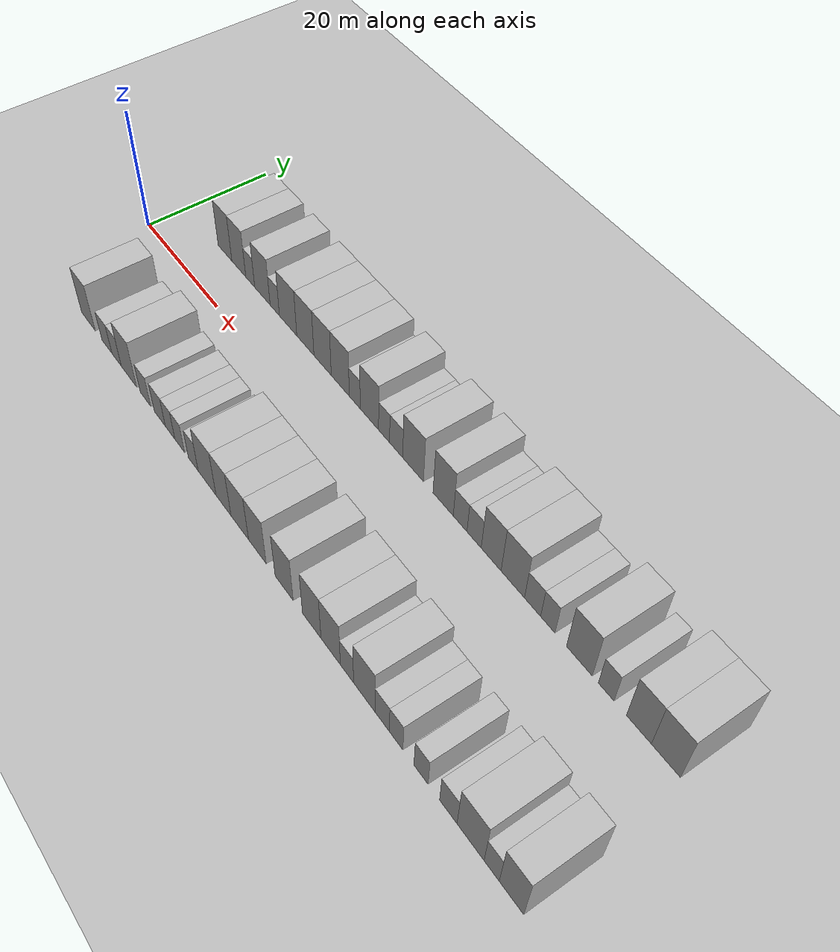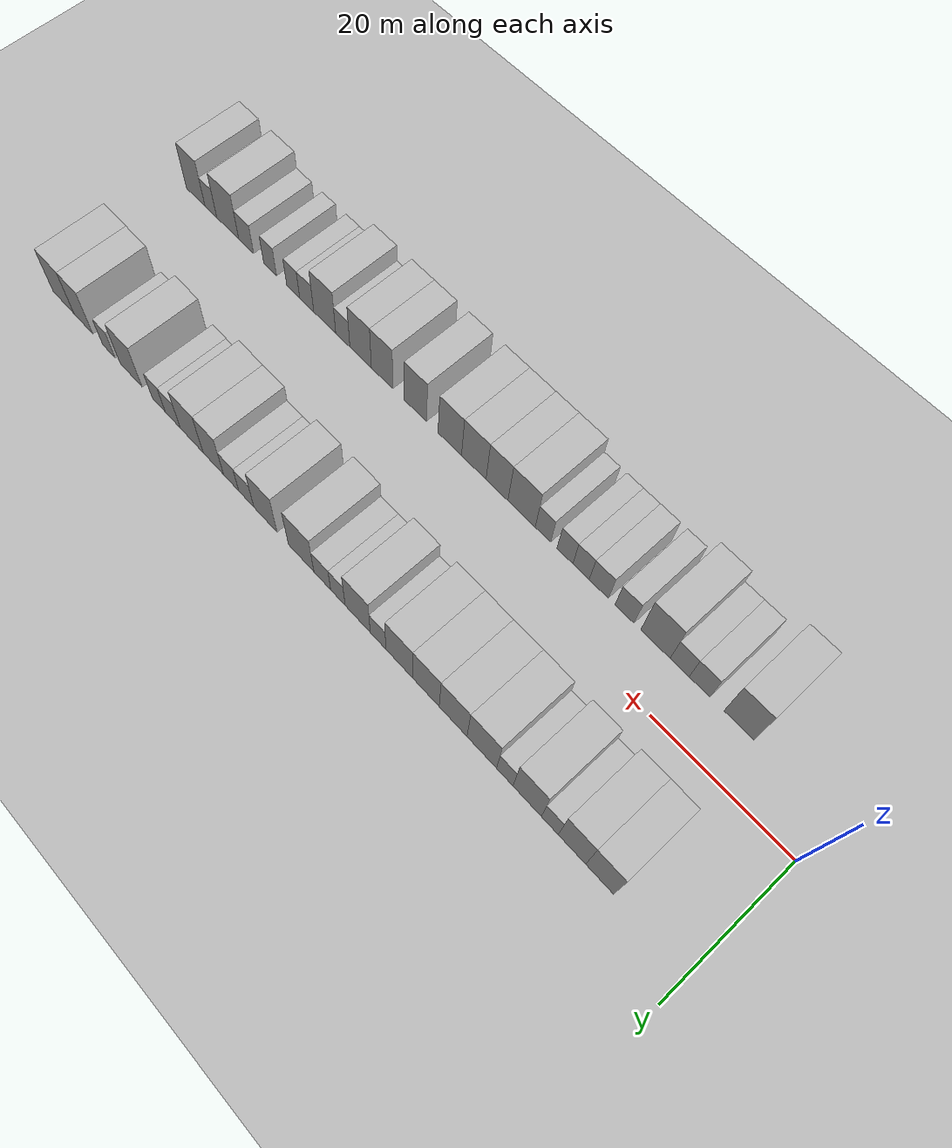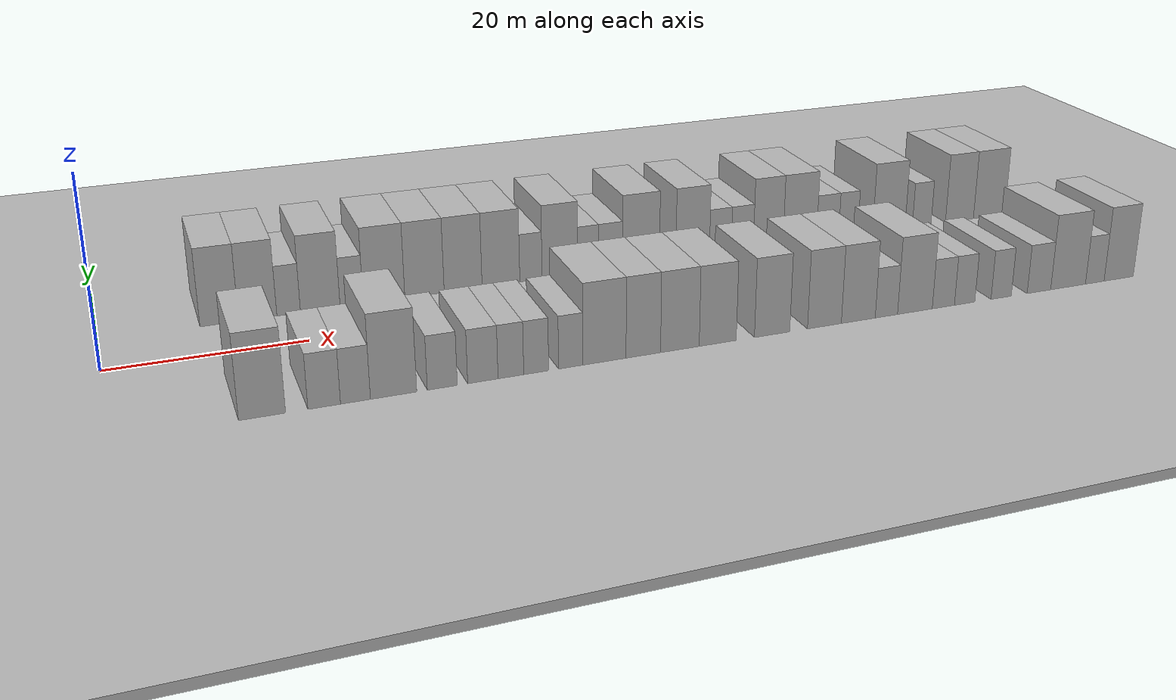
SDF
<sdf version="1.6">
 <world name="default">
  <include><name>ground_plane_1</name><uri>model://HANNAS_ground_plane</uri></include>
  <include>
   <name>ground_plane_2</name>
   <uri>model://HANNAS_ground_plane</uri>
   <pose>100 0 0  0 0 0</pose>
  </include>
  <model name="building_1">
   <static>1</static>
   <pose>11.9366 11.0000 0 0.000000 0.000000 1.570796</pose>
   <link name="link">
    <pose>0 0 4.50 0 0 0</pose>
    <collision name="collision"><geometry><box><size>10.0000 3.8731 9.0000</size></box></geometry></collision>
    <visual name="visual">
     <cast_shadows>0</cast_shadows>
     <geometry><box><size>10.0000 3.8731 9.0000</size></box></geometry>
     <material>
      <script>
       <uri>model://HANNAS_wall/materials/scripts</uri>
       <uri>model://HANNAS_wall/materials/textures</uri>
       <name>vrc/HANNAS_wall</name>
      </script>
     </material>
    </visual>
   </link>
  </model>
  <model name="building_2">
   <static>1</static>
   <pose>15.8093 11.0000 0 0.000000 0.000000 1.570796</pose>
   <link name="link">
    <pose>0 0 4.50 0 0 0</pose>
    <collision name="collision"><geometry><box><size>10.0000 3.8724 9.0000</size></box></geometry></collision>
    <visual name="visual">
     <cast_shadows>0</cast_shadows>
     <geometry><box><size>10.0000 3.8724 9.0000</size></box></geometry>
     <material>
      <script>
       <uri>model://HANNAS_wall/materials/scripts</uri>
       <uri>model://HANNAS_wall/materials/textures</uri>
       <name>vrc/HANNAS_wall</name>
      </script>
     </material>
    </visual>
   </link>
  </model>
  <model name="building_3">
   <static>1</static>
   <pose>18.9615 11.0000 0 0.000000 0.000000 1.570796</pose>
   <link name="link">
    <pose>0 0 3.00 0 0 0</pose>
    <collision name="collision"><geometry><box><size>10.0000 2.4319 6.0000</size></box></geometry></collision>
    <visual name="visual">
     <cast_shadows>0</cast_shadows>
     <geometry><box><size>10.0000 2.4319 6.0000</size></box></geometry>
     <material>
      <script>
       <uri>model://HANNAS_wall/materials/scripts</uri>
       <uri>model://HANNAS_wall/materials/textures</uri>
       <name>vrc/HANNAS_wall</name>
      </script>
     </material>
    </visual>
   </link>
  </model>
  <model name="building_4">
   <static>1</static>
   <pose>22.2412 11.0000 0 0.000000 0.000000 1.570796</pose>
   <link name="link">
    <pose>0 0 4.50 0 0 0</pose>
    <collision name="collision"><geometry><box><size>10.0000 4.1276 9.0000</size></box></geometry></collision>
    <visual name="visual">
     <cast_shadows>0</cast_shadows>
     <geometry><box><size>10.0000 4.1276 9.0000</size></box></geometry>
     <material>
      <script>
       <uri>model://HANNAS_wall/materials/scripts</uri>
       <uri>model://HANNAS_wall/materials/textures</uri>
       <name>vrc/HANNAS_wall</name>
      </script>
     </material>
    </visual>
   </link>
  </model>
  <model name="building_5">
   <static>1</static>
   <pose>25.5283 11.0000 0 0.000000 0.000000 1.570796</pose>
   <link name="link">
    <pose>0 0 3.00 0 0 0</pose>
    <collision name="collision"><geometry><box><size>10.0000 2.4465 6.0000</size></box></geometry></collision>
    <visual name="visual">
     <cast_shadows>0</cast_shadows>
     <geometry><box><size>10.0000 2.4465 6.0000</size></box></geometry>
     <material>
      <script>
       <uri>model://HANNAS_wall/materials/scripts</uri>
       <uri>model://HANNAS_wall/materials/textures</uri>
       <name>vrc/HANNAS_wall</name>
      </script>
     </material>
    </visual>
   </link>
  </model>
  <model name="building_6">
   <static>1</static>
   <pose>28.9808 11.0000 0 0.000000 0.000000 1.570796</pose>
   <link name="link">
    <pose>0 0 4.50 0 0 0</pose>
    <collision name="collision"><geometry><box><size>10.0000 4.4585 9.0000</size></box></geometry></collision>
    <visual name="visual">
     <cast_shadows>0</cast_shadows>
     <geometry><box><size>10.0000 4.4585 9.0000</size></box></geometry>
     <material>
      <script>
       <uri>model://HANNAS_wall/materials/scripts</uri>
       <uri>model://HANNAS_wall/materials/textures</uri>
       <name>vrc/HANNAS_wall</name>
      </script>
     </material>
    </visual>
   </link>
  </model>
  <model name="building_7">
   <static>1</static>
   <pose>33.3568 11.0000 0 0.000000 0.000000 1.570796</pose>
   <link name="link">
    <pose>0 0 4.50 0 0 0</pose>
    <collision name="collision"><geometry><box><size>10.0000 4.2935 9.0000</size></box></geometry></collision>
    <visual name="visual">
     <cast_shadows>0</cast_shadows>
     <geometry><box><size>10.0000 4.2935 9.0000</size></box></geometry>
     <material>
      <script>
       <uri>model://HANNAS_wall/materials/scripts</uri>
       <uri>model://HANNAS_wall/materials/textures</uri>
       <name>vrc/HANNAS_wall</name>
      </script>
     </material>
    </visual>
   </link>
  </model>
  <model name="building_8">
   <static>1</static>
   <pose>37.6068 11.0000 0 0.000000 0.000000 1.570796</pose>
   <link name="link">
    <pose>0 0 4.50 0 0 0</pose>
    <collision name="collision"><geometry><box><size>10.0000 4.2064 9.0000</size></box></geometry></collision>
    <visual name="visual">
     <cast_shadows>0</cast_shadows>
     <geometry><box><size>10.0000 4.2064 9.0000</size></box></geometry>
     <material>
      <script>
       <uri>model://HANNAS_wall/materials/scripts</uri>
       <uri>model://HANNAS_wall/materials/textures</uri>
       <name>vrc/HANNAS_wall</name>
      </script>
     </material>
    </visual>
   </link>
  </model>
  <model name="building_9">
   <static>1</static>
   <pose>41.8423 11.0000 0 0.000000 0.000000 1.570796</pose>
   <link name="link">
    <pose>0 0 4.50 0 0 0</pose>
    <collision name="collision"><geometry><box><size>10.0000 4.2647 9.0000</size></box></geometry></collision>
    <visual name="visual">
     <cast_shadows>0</cast_shadows>
     <geometry><box><size>10.0000 4.2647 9.0000</size></box></geometry>
     <material>
      <script>
       <uri>model://HANNAS_wall/materials/scripts</uri>
       <uri>model://HANNAS_wall/materials/textures</uri>
       <name>vrc/HANNAS_wall</name>
      </script>
     </material>
    </visual>
   </link>
  </model>
  <model name="building_10">
   <static>1</static>
   <pose>45.2509 11.0000 0 0.000000 0.000000 1.570796</pose>
   <link name="link">
    <pose>0 0 3.00 0 0 0</pose>
    <collision name="collision"><geometry><box><size>10.0000 2.5525 6.0000</size></box></geometry></collision>
    <visual name="visual">
     <cast_shadows>0</cast_shadows>
     <geometry><box><size>10.0000 2.5525 6.0000</size></box></geometry>
     <material>
      <script>
       <uri>model://HANNAS_wall/materials/scripts</uri>
       <uri>model://HANNAS_wall/materials/textures</uri>
       <name>vrc/HANNAS_wall</name>
      </script>
     </material>
    </visual>
   </link>
  </model>
  <model name="building_11">
   <static>1</static>
   <pose>48.6036 11.0000 0 0.000000 0.000000 1.570796</pose>
   <link name="link">
    <pose>0 0 4.50 0 0 0</pose>
    <collision name="collision"><geometry><box><size>10.0000 4.1528 9.0000</size></box></geometry></collision>
    <visual name="visual">
     <cast_shadows>0</cast_shadows>
     <geometry><box><size>10.0000 4.1528 9.0000</size></box></geometry>
     <material>
      <script>
       <uri>model://HANNAS_wall/materials/scripts</uri>
       <uri>model://HANNAS_wall/materials/textures</uri>
       <name>vrc/HANNAS_wall</name>
      </script>
     </material>
    </visual>
   </link>
  </model>
  <model name="building_12">
   <static>1</static>
   <pose>51.9011 11.0000 0 0.000000 0.000000 1.570796</pose>
   <link name="link">
    <pose>0 0 3.00 0 0 0</pose>
    <collision name="collision"><geometry><box><size>10.0000 2.4423 6.0000</size></box></geometry></collision>
    <visual name="visual">
     <cast_shadows>0</cast_shadows>
     <geometry><box><size>10.0000 2.4423 6.0000</size></box></geometry>
     <material>
      <script>
       <uri>model://HANNAS_wall/materials/scripts</uri>
       <uri>model://HANNAS_wall/materials/textures</uri>
       <name>vrc/HANNAS_wall</name>
      </script>
     </material>
    </visual>
   </link>
  </model>
  <model name="building_13">
   <static>1</static>
   <pose>54.5475 11.0000 0 0.000000 0.000000 1.570796</pose>
   <link name="link">
    <pose>0 0 3.00 0 0 0</pose>
    <collision name="collision"><geometry><box><size>10.0000 2.8504 6.0000</size></box></geometry></collision>
    <visual name="visual">
     <cast_shadows>0</cast_shadows>
     <geometry><box><size>10.0000 2.8504 6.0000</size></box></geometry>
     <material>
      <script>
       <uri>model://HANNAS_wall/materials/scripts</uri>
       <uri>model://HANNAS_wall/materials/textures</uri>
       <name>vrc/HANNAS_wall</name>
      </script>
     </material>
    </visual>
   </link>
  </model>
  <model name="building_14">
   <static>1</static>
   <pose>58.1866 11.0000 0 0.000000 0.000000 1.570796</pose>
   <link name="link">
    <pose>0 0 4.50 0 0 0</pose>
    <collision name="collision"><geometry><box><size>10.0000 4.4278 9.0000</size></box></geometry></collision>
    <visual name="visual">
     <cast_shadows>0</cast_shadows>
     <geometry><box><size>10.0000 4.4278 9.0000</size></box></geometry>
     <material>
      <script>
       <uri>model://HANNAS_wall/materials/scripts</uri>
       <uri>model://HANNAS_wall/materials/textures</uri>
       <name>vrc/HANNAS_wall</name>
      </script>
     </material>
    </visual>
   </link>
  </model>
  <model name="building_15">
   <static>1</static>
   <pose>64.4646 11.0000 0 0.000000 0.000000 1.570796</pose>
   <link name="link">
    <pose>0 0 4.50 0 0 0</pose>
    <collision name="collision"><geometry><box><size>10.0000 4.1282 9.0000</size></box></geometry></collision>
    <visual name="visual">
     <cast_shadows>0</cast_shadows>
     <geometry><box><size>10.0000 4.1282 9.0000</size></box></geometry>
     <material>
      <script>
       <uri>model://HANNAS_wall/materials/scripts</uri>
       <uri>model://HANNAS_wall/materials/textures</uri>
       <name>vrc/HANNAS_wall</name>
      </script>
     </material>
    </visual>
   </link>
  </model>
  <model name="building_16">
   <static>1</static>
   <pose>67.8935 11.0000 0 0.000000 0.000000 1.570796</pose>
   <link name="link">
    <pose>0 0 3.00 0 0 0</pose>
    <collision name="collision"><geometry><box><size>10.0000 2.7296 6.0000</size></box></geometry></collision>
    <visual name="visual">
     <cast_shadows>0</cast_shadows>
     <geometry><box><size>10.0000 2.7296 6.0000</size></box></geometry>
     <material>
      <script>
       <uri>model://HANNAS_wall/materials/scripts</uri>
       <uri>model://HANNAS_wall/materials/textures</uri>
       <name>vrc/HANNAS_wall</name>
      </script>
     </material>
    </visual>
   </link>
  </model>
  <model name="building_17">
   <static>1</static>
   <pose>70.6491 11.0000 0 0.000000 0.000000 1.570796</pose>
   <link name="link">
    <pose>0 0 3.00 0 0 0</pose>
    <collision name="collision"><geometry><box><size>10.0000 2.7816 6.0000</size></box></geometry></collision>
    <visual name="visual">
     <cast_shadows>0</cast_shadows>
     <geometry><box><size>10.0000 2.7816 6.0000</size></box></geometry>
     <material>
      <script>
       <uri>model://HANNAS_wall/materials/scripts</uri>
       <uri>model://HANNAS_wall/materials/textures</uri>
       <name>vrc/HANNAS_wall</name>
      </script>
     </material>
    </visual>
   </link>
  </model>
  <model name="building_18">
   <static>1</static>
   <pose>73.9400 11.0000 0 0.000000 0.000000 1.570796</pose>
   <link name="link">
    <pose>0 0 4.50 0 0 0</pose>
    <collision name="collision"><geometry><box><size>10.0000 3.8002 9.0000</size></box></geometry></collision>
    <visual name="visual">
     <cast_shadows>0</cast_shadows>
     <geometry><box><size>10.0000 3.8002 9.0000</size></box></geometry>
     <material>
      <script>
       <uri>model://HANNAS_wall/materials/scripts</uri>
       <uri>model://HANNAS_wall/materials/textures</uri>
       <name>vrc/HANNAS_wall</name>
      </script>
     </material>
    </visual>
   </link>
  </model>
  <model name="building_19">
   <static>1</static>
   <pose>78.0126 11.0000 0 0.000000 0.000000 1.570796</pose>
   <link name="link">
    <pose>0 0 4.50 0 0 0</pose>
    <collision name="collision"><geometry><box><size>10.0000 4.3451 9.0000</size></box></geometry></collision>
    <visual name="visual">
     <cast_shadows>0</cast_shadows>
     <geometry><box><size>10.0000 4.3451 9.0000</size></box></geometry>
     <material>
      <script>
       <uri>model://HANNAS_wall/materials/scripts</uri>
       <uri>model://HANNAS_wall/materials/textures</uri>
       <name>vrc/HANNAS_wall</name>
      </script>
     </material>
    </visual>
   </link>
  </model>
  <model name="building_20">
   <static>1</static>
   <pose>81.6403 11.0000 0 0.000000 0.000000 1.570796</pose>
   <link name="link">
    <pose>0 0 3.00 0 0 0</pose>
    <collision name="collision"><geometry><box><size>10.0000 2.9102 6.0000</size></box></geometry></collision>
    <visual name="visual">
     <cast_shadows>0</cast_shadows>
     <geometry><box><size>10.0000 2.9102 6.0000</size></box></geometry>
     <material>
      <script>
       <uri>model://HANNAS_wall/materials/scripts</uri>
       <uri>model://HANNAS_wall/materials/textures</uri>
       <name>vrc/HANNAS_wall</name>
      </script>
     </material>
    </visual>
   </link>
  </model>
  <model name="building_21">
   <static>1</static>
   <pose>84.3688 11.0000 0 0.000000 0.000000 1.570796</pose>
   <link name="link">
    <pose>0 0 3.00 0 0 0</pose>
    <collision name="collision"><geometry><box><size>10.0000 2.5467 6.0000</size></box></geometry></collision>
    <visual name="visual">
     <cast_shadows>0</cast_shadows>
     <geometry><box><size>10.0000 2.5467 6.0000</size></box></geometry>
     <material>
      <script>
       <uri>model://HANNAS_wall/materials/scripts</uri>
       <uri>model://HANNAS_wall/materials/textures</uri>
       <name>vrc/HANNAS_wall</name>
      </script>
     </material>
    </visual>
   </link>
  </model>
  <model name="building_22">
   <static>1</static>
   <pose>89.8376 11.0000 0 0.000000 0.000000 1.570796</pose>
   <link name="link">
    <pose>0 0 4.50 0 0 0</pose>
    <collision name="collision"><geometry><box><size>10.0000 4.3909 9.0000</size></box></geometry></collision>
    <visual name="visual">
     <cast_shadows>0</cast_shadows>
     <geometry><box><size>10.0000 4.3909 9.0000</size></box></geometry>
     <material>
      <script>
       <uri>model://HANNAS_wall/materials/scripts</uri>
       <uri>model://HANNAS_wall/materials/textures</uri>
       <name>vrc/HANNAS_wall</name>
      </script>
     </material>
    </visual>
   </link>
  </model>
  <model name="building_23">
   <static>1</static>
   <pose>94.3251 11.0000 0 0.000000 0.000000 1.570796</pose>
   <link name="link">
    <pose>0 0 3.00 0 0 0</pose>
    <collision name="collision"><geometry><box><size>10.0000 2.5842 6.0000</size></box></geometry></collision>
    <visual name="visual">
     <cast_shadows>0</cast_shadows>
     <geometry><box><size>10.0000 2.5842 6.0000</size></box></geometry>
     <material>
      <script>
       <uri>model://HANNAS_wall/materials/scripts</uri>
       <uri>model://HANNAS_wall/materials/textures</uri>
       <name>vrc/HANNAS_wall</name>
      </script>
     </material>
    </visual>
   </link>
  </model>
  <model name="building_24">
   <static>1</static>
   <pose>99.5820 11.0000 0 0.000000 0.000000 1.570796</pose>
   <link name="link">
    <pose>0 0 4.50 0 0 0</pose>
    <collision name="collision"><geometry><box><size>10.0000 3.9297 9.0000</size></box></geometry></collision>
    <visual name="visual">
     <cast_shadows>0</cast_shadows>
     <geometry><box><size>10.0000 3.9297 9.0000</size></box></geometry>
     <material>
      <script>
       <uri>model://HANNAS_wall/materials/scripts</uri>
       <uri>model://HANNAS_wall/materials/textures</uri>
       <name>vrc/HANNAS_wall</name>
      </script>
     </material>
    </visual>
   </link>
  </model>
  <model name="building_25">
   <static>1</static>
   <pose>103.7724 11.0000 0 0.000000 0.000000 1.570796</pose>
   <link name="link">
    <pose>0 0 4.50 0 0 0</pose>
    <collision name="collision"><geometry><box><size>10.0000 4.4511 9.0000</size></box></geometry></collision>
    <visual name="visual">
     <cast_shadows>0</cast_shadows>
     <geometry><box><size>10.0000 4.4511 9.0000</size></box></geometry>
     <material>
      <script>
       <uri>model://HANNAS_wall/materials/scripts</uri>
       <uri>model://HANNAS_wall/materials/textures</uri>
       <name>vrc/HANNAS_wall</name>
      </script>
     </material>
    </visual>
   </link>
  </model>
  <model name="building_51">
   <static>1</static>
   <pose>13.0851 -11.0000 0 0.000000 0.000000 1.570796</pose>
   <link name="link">
    <pose>0 0 4.50 0 0 0</pose>
    <collision name="collision"><geometry><box><size>10.0000 4.1702 9.0000</size></box></geometry></collision>
    <visual name="visual">
     <cast_shadows>0</cast_shadows>
     <geometry><box><size>10.0000 4.1702 9.0000</size></box></geometry>
     <material>
      <script>
       <uri>model://HANNAS_wall/materials/scripts</uri>
       <uri>model://HANNAS_wall/materials/textures</uri>
       <name>vrc/HANNAS_wall</name>
      </script>
     </material>
    </visual>
   </link>
  </model>
  <model name="building_52">
   <static>1</static>
   <pose>18.6510 -11.0000 0 0.000000 0.000000 1.570796</pose>
   <link name="link">
    <pose>0 0 3.00 0 0 0</pose>
    <collision name="collision"><geometry><box><size>10.0000 2.9616 6.0000</size></box></geometry></collision>
    <visual name="visual">
     <cast_shadows>0</cast_shadows>
     <geometry><box><size>10.0000 2.9616 6.0000</size></box></geometry>
     <material>
      <script>
       <uri>model://HANNAS_wall/materials/scripts</uri>
       <uri>model://HANNAS_wall/materials/textures</uri>
       <name>vrc/HANNAS_wall</name>
      </script>
     </material>
    </visual>
   </link>
  </model>
  <model name="building_53">
   <static>1</static>
   <pose>21.5071 -11.0000 0 0.000000 0.000000 1.570796</pose>
   <link name="link">
    <pose>0 0 3.00 0 0 0</pose>
    <collision name="collision"><geometry><box><size>10.0000 2.7506 6.0000</size></box></geometry></collision>
    <visual name="visual">
     <cast_shadows>0</cast_shadows>
     <geometry><box><size>10.0000 2.7506 6.0000</size></box></geometry>
     <material>
      <script>
       <uri>model://HANNAS_wall/materials/scripts</uri>
       <uri>model://HANNAS_wall/materials/textures</uri>
       <name>vrc/HANNAS_wall</name>
      </script>
     </material>
    </visual>
   </link>
  </model>
  <model name="building_54">
   <static>1</static>
   <pose>25.0486 -11.0000 0 0.000000 0.000000 1.570796</pose>
   <link name="link">
    <pose>0 0 4.50 0 0 0</pose>
    <collision name="collision"><geometry><box><size>10.0000 4.3323 9.0000</size></box></geometry></collision>
    <visual name="visual">
     <cast_shadows>0</cast_shadows>
     <geometry><box><size>10.0000 4.3323 9.0000</size></box></geometry>
     <material>
      <script>
       <uri>model://HANNAS_wall/materials/scripts</uri>
       <uri>model://HANNAS_wall/materials/textures</uri>
       <name>vrc/HANNAS_wall</name>
      </script>
     </material>
    </visual>
   </link>
  </model>
  <model name="building_55">
   <static>1</static>
   <pose>29.6472 -11.0000 0 0.000000 0.000000 1.570796</pose>
   <link name="link">
    <pose>0 0 3.00 0 0 0</pose>
    <collision name="collision"><geometry><box><size>10.0000 2.8649 6.0000</size></box></geometry></collision>
    <visual name="visual">
     <cast_shadows>0</cast_shadows>
     <geometry><box><size>10.0000 2.8649 6.0000</size></box></geometry>
     <material>
      <script>
       <uri>model://HANNAS_wall/materials/scripts</uri>
       <uri>model://HANNAS_wall/materials/textures</uri>
       <name>vrc/HANNAS_wall</name>
      </script>
     </material>
    </visual>
   </link>
  </model>
  <model name="building_56">
   <static>1</static>
   <pose>33.5573 -11.0000 0 0.000000 0.000000 1.570796</pose>
   <link name="link">
    <pose>0 0 3.00 0 0 0</pose>
    <collision name="collision"><geometry><box><size>10.0000 2.9553 6.0000</size></box></geometry></collision>
    <visual name="visual">
     <cast_shadows>0</cast_shadows>
     <geometry><box><size>10.0000 2.9553 6.0000</size></box></geometry>
     <material>
      <script>
       <uri>model://HANNAS_wall/materials/scripts</uri>
       <uri>model://HANNAS_wall/materials/textures</uri>
       <name>vrc/HANNAS_wall</name>
      </script>
     </material>
    </visual>
   </link>
  </model>
  <model name="building_57">
   <static>1</static>
   <pose>36.3014 -11.0000 0 0.000000 0.000000 1.570796</pose>
   <link name="link">
    <pose>0 0 3.00 0 0 0</pose>
    <collision name="collision"><geometry><box><size>10.0000 2.5328 6.0000</size></box></geometry></collision>
    <visual name="visual">
     <cast_shadows>0</cast_shadows>
     <geometry><box><size>10.0000 2.5328 6.0000</size></box></geometry>
     <material>
      <script>
       <uri>model://HANNAS_wall/materials/scripts</uri>
       <uri>model://HANNAS_wall/materials/textures</uri>
       <name>vrc/HANNAS_wall</name>
      </script>
     </material>
    </visual>
   </link>
  </model>
  <model name="building_58">
   <static>1</static>
   <pose>38.8118 -11.0000 0 0.000000 0.000000 1.570796</pose>
   <link name="link">
    <pose>0 0 3.00 0 0 0</pose>
    <collision name="collision"><geometry><box><size>10.0000 2.4882 6.0000</size></box></geometry></collision>
    <visual name="visual">
     <cast_shadows>0</cast_shadows>
     <geometry><box><size>10.0000 2.4882 6.0000</size></box></geometry>
     <material>
      <script>
       <uri>model://HANNAS_wall/materials/scripts</uri>
       <uri>model://HANNAS_wall/materials/textures</uri>
       <name>vrc/HANNAS_wall</name>
      </script>
     </material>
    </visual>
   </link>
  </model>
  <model name="building_59">
   <static>1</static>
   <pose>42.2905 -11.0000 0 0.000000 0.000000 1.570796</pose>
   <link name="link">
    <pose>0 0 3.00 0 0 0</pose>
    <collision name="collision"><geometry><box><size>10.0000 2.4692 6.0000</size></box></geometry></collision>
    <visual name="visual">
     <cast_shadows>0</cast_shadows>
     <geometry><box><size>10.0000 2.4692 6.0000</size></box></geometry>
     <material>
      <script>
       <uri>model://HANNAS_wall/materials/scripts</uri>
       <uri>model://HANNAS_wall/materials/textures</uri>
       <name>vrc/HANNAS_wall</name>
      </script>
     </material>
    </visual>
   </link>
  </model>
  <model name="building_60">
   <static>1</static>
   <pose>45.7388 -11.0000 0 0.000000 0.000000 1.570796</pose>
   <link name="link">
    <pose>0 0 4.50 0 0 0</pose>
    <collision name="collision"><geometry><box><size>10.0000 4.4273 9.0000</size></box></geometry></collision>
    <visual name="visual">
     <cast_shadows>0</cast_shadows>
     <geometry><box><size>10.0000 4.4273 9.0000</size></box></geometry>
     <material>
      <script>
       <uri>model://HANNAS_wall/materials/scripts</uri>
       <uri>model://HANNAS_wall/materials/textures</uri>
       <name>vrc/HANNAS_wall</name>
      </script>
     </material>
    </visual>
   </link>
  </model>
  <model name="building_61">
   <static>1</static>
   <pose>49.7614 -11.0000 0 0.000000 0.000000 1.570796</pose>
   <link name="link">
    <pose>0 0 4.50 0 0 0</pose>
    <collision name="collision"><geometry><box><size>10.0000 3.6179 9.0000</size></box></geometry></collision>
    <visual name="visual">
     <cast_shadows>0</cast_shadows>
     <geometry><box><size>10.0000 3.6179 9.0000</size></box></geometry>
     <material>
      <script>
       <uri>model://HANNAS_wall/materials/scripts</uri>
       <uri>model://HANNAS_wall/materials/textures</uri>
       <name>vrc/HANNAS_wall</name>
      </script>
     </material>
    </visual>
   </link>
  </model>
  <model name="building_62">
   <static>1</static>
   <pose>53.6263 -11.0000 0 0.000000 0.000000 1.570796</pose>
   <link name="link">
    <pose>0 0 4.50 0 0 0</pose>
    <collision name="collision"><geometry><box><size>10.0000 4.1120 9.0000</size></box></geometry></collision>
    <visual name="visual">
     <cast_shadows>0</cast_shadows>
     <geometry><box><size>10.0000 4.1120 9.0000</size></box></geometry>
     <material>
      <script>
       <uri>model://HANNAS_wall/materials/scripts</uri>
       <uri>model://HANNAS_wall/materials/textures</uri>
       <name>vrc/HANNAS_wall</name>
      </script>
     </material>
    </visual>
   </link>
  </model>
  <model name="building_63">
   <static>1</static>
   <pose>57.6907 -11.0000 0 0.000000 0.000000 1.570796</pose>
   <link name="link">
    <pose>0 0 4.50 0 0 0</pose>
    <collision name="collision"><geometry><box><size>10.0000 4.0166 9.0000</size></box></geometry></collision>
    <visual name="visual">
     <cast_shadows>0</cast_shadows>
     <geometry><box><size>10.0000 4.0166 9.0000</size></box></geometry>
     <material>
      <script>
       <uri>model://HANNAS_wall/materials/scripts</uri>
       <uri>model://HANNAS_wall/materials/textures</uri>
       <name>vrc/HANNAS_wall</name>
      </script>
     </material>
    </visual>
   </link>
  </model>
  <model name="building_64">
   <static>1</static>
   <pose>63.6641 -11.0000 0 0.000000 0.000000 1.570796</pose>
   <link name="link">
    <pose>0 0 4.50 0 0 0</pose>
    <collision name="collision"><geometry><box><size>10.0000 3.9303 9.0000</size></box></geometry></collision>
    <visual name="visual">
     <cast_shadows>0</cast_shadows>
     <geometry><box><size>10.0000 3.9303 9.0000</size></box></geometry>
     <material>
      <script>
       <uri>model://HANNAS_wall/materials/scripts</uri>
       <uri>model://HANNAS_wall/materials/textures</uri>
       <name>vrc/HANNAS_wall</name>
      </script>
     </material>
    </visual>
   </link>
  </model>
  <model name="building_65">
   <static>1</static>
   <pose>69.5627 -11.0000 0 0.000000 0.000000 1.570796</pose>
   <link name="link">
    <pose>0 0 4.50 0 0 0</pose>
    <collision name="collision"><geometry><box><size>10.0000 3.8668 9.0000</size></box></geometry></collision>
    <visual name="visual">
     <cast_shadows>0</cast_shadows>
     <geometry><box><size>10.0000 3.8668 9.0000</size></box></geometry>
     <material>
      <script>
       <uri>model://HANNAS_wall/materials/scripts</uri>
       <uri>model://HANNAS_wall/materials/textures</uri>
       <name>vrc/HANNAS_wall</name>
      </script>
     </material>
    </visual>
   </link>
  </model>
  <model name="building_66">
   <static>1</static>
   <pose>73.4627 -11.0000 0 0.000000 0.000000 1.570796</pose>
   <link name="link">
    <pose>0 0 4.50 0 0 0</pose>
    <collision name="collision"><geometry><box><size>10.0000 3.9334 9.0000</size></box></geometry></collision>
    <visual name="visual">
     <cast_shadows>0</cast_shadows>
     <geometry><box><size>10.0000 3.9334 9.0000</size></box></geometry>
     <material>
      <script>
       <uri>model://HANNAS_wall/materials/scripts</uri>
       <uri>model://HANNAS_wall/materials/textures</uri>
       <name>vrc/HANNAS_wall</name>
      </script>
     </material>
    </visual>
   </link>
  </model>
  <model name="building_67">
   <static>1</static>
   <pose>76.7416 -11.0000 0 0.000000 0.000000 1.570796</pose>
   <link name="link">
    <pose>0 0 3.00 0 0 0</pose>
    <collision name="collision"><geometry><box><size>10.0000 2.6243 6.0000</size></box></geometry></collision>
    <visual name="visual">
     <cast_shadows>0</cast_shadows>
     <geometry><box><size>10.0000 2.6243 6.0000</size></box></geometry>
     <material>
      <script>
       <uri>model://HANNAS_wall/materials/scripts</uri>
       <uri>model://HANNAS_wall/materials/textures</uri>
       <name>vrc/HANNAS_wall</name>
      </script>
     </material>
    </visual>
   </link>
  </model>
  <model name="building_68">
   <static>1</static>
   <pose>80.1272 -11.0000 0 0.000000 0.000000 1.570796</pose>
   <link name="link">
    <pose>0 0 4.50 0 0 0</pose>
    <collision name="collision"><geometry><box><size>10.0000 4.1468 9.0000</size></box></geometry></collision>
    <visual name="visual">
     <cast_shadows>0</cast_shadows>
     <geometry><box><size>10.0000 4.1468 9.0000</size></box></geometry>
     <material>
      <script>
       <uri>model://HANNAS_wall/materials/scripts</uri>
       <uri>model://HANNAS_wall/materials/textures</uri>
       <name>vrc/HANNAS_wall</name>
      </script>
     </material>
    </visual>
   </link>
  </model>
  <model name="building_69">
   <static>1</static>
   <pose>83.5422 -11.0000 0 0.000000 0.000000 1.570796</pose>
   <link name="link">
    <pose>0 0 3.00 0 0 0</pose>
    <collision name="collision"><geometry><box><size>10.0000 2.6831 6.0000</size></box></geometry></collision>
    <visual name="visual">
     <cast_shadows>0</cast_shadows>
     <geometry><box><size>10.0000 2.6831 6.0000</size></box></geometry>
     <material>
      <script>
       <uri>model://HANNAS_wall/materials/scripts</uri>
       <uri>model://HANNAS_wall/materials/textures</uri>
       <name>vrc/HANNAS_wall</name>
      </script>
     </material>
    </visual>
   </link>
  </model>
  <model name="building_70">
   <static>1</static>
   <pose>86.1309 -11.0000 0 0.000000 0.000000 1.570796</pose>
   <link name="link">
    <pose>0 0 3.00 0 0 0</pose>
    <collision name="collision"><geometry><box><size>10.0000 2.4944 6.0000</size></box></geometry></collision>
    <visual name="visual">
     <cast_shadows>0</cast_shadows>
     <geometry><box><size>10.0000 2.4944 6.0000</size></box></geometry>
     <material>
      <script>
       <uri>model://HANNAS_wall/materials/scripts</uri>
       <uri>model://HANNAS_wall/materials/textures</uri>
       <name>vrc/HANNAS_wall</name>
      </script>
     </material>
    </visual>
   </link>
  </model>
  <model name="building_71">
   <static>1</static>
   <pose>90.6410 -11.0000 0 0.000000 0.000000 1.570796</pose>
   <link name="link">
    <pose>0 0 3.00 0 0 0</pose>
    <collision name="collision"><geometry><box><size>10.0000 2.5259 6.0000</size></box></geometry></collision>
    <visual name="visual">
     <cast_shadows>0</cast_shadows>
     <geometry><box><size>10.0000 2.5259 6.0000</size></box></geometry>
     <material>
      <script>
       <uri>model://HANNAS_wall/materials/scripts</uri>
       <uri>model://HANNAS_wall/materials/textures</uri>
       <name>vrc/HANNAS_wall</name>
      </script>
     </material>
    </visual>
   </link>
  </model>
  <model name="building_72">
   <static>1</static>
   <pose>95.3973 -11.0000 0 0.000000 0.000000 1.570796</pose>
   <link name="link">
    <pose>0 0 3.00 0 0 0</pose>
    <collision name="collision"><geometry><box><size>10.0000 2.9865 6.0000</size></box></geometry></collision>
    <visual name="visual">
     <cast_shadows>0</cast_shadows>
     <geometry><box><size>10.0000 2.9865 6.0000</size></box></geometry>
     <material>
      <script>
       <uri>model://HANNAS_wall/materials/scripts</uri>
       <uri>model://HANNAS_wall/materials/textures</uri>
       <name>vrc/HANNAS_wall</name>
      </script>
     </material>
    </visual>
   </link>
  </model>
  <model name="building_73">
   <static>1</static>
   <pose>99.1382 -11.0000 0 0.000000 0.000000 1.570796</pose>
   <link name="link">
    <pose>0 0 4.50 0 0 0</pose>
    <collision name="collision"><geometry><box><size>10.0000 4.4952 9.0000</size></box></geometry></collision>
    <visual name="visual">
     <cast_shadows>0</cast_shadows>
     <geometry><box><size>10.0000 4.4952 9.0000</size></box></geometry>
     <material>
      <script>
       <uri>model://HANNAS_wall/materials/scripts</uri>
       <uri>model://HANNAS_wall/materials/textures</uri>
       <name>vrc/HANNAS_wall</name>
      </script>
     </material>
    </visual>
   </link>
  </model>
  <model name="building_74">
   <static>1</static>
   <pose>102.6008 -11.0000 0 0.000000 0.000000 1.570796</pose>
   <link name="link">
    <pose>0 0 3.00 0 0 0</pose>
    <collision name="collision"><geometry><box><size>10.0000 2.4299 6.0000</size></box></geometry></collision>
    <visual name="visual">
     <cast_shadows>0</cast_shadows>
     <geometry><box><size>10.0000 2.4299 6.0000</size></box></geometry>
     <material>
      <script>
       <uri>model://HANNAS_wall/materials/scripts</uri>
       <uri>model://HANNAS_wall/materials/textures</uri>
       <name>vrc/HANNAS_wall</name>
      </script>
     </material>
    </visual>
   </link>
  </model>
  <model name="building_75">
   <static>1</static>
   <pose>105.7453 -11.0000 0 0.000000 0.000000 1.570796</pose>
   <link name="link">
    <pose>0 0 4.50 0 0 0</pose>
    <collision name="collision"><geometry><box><size>10.0000 3.8592 9.0000</size></box></geometry></collision>
    <visual name="visual">
     <cast_shadows>0</cast_shadows>
     <geometry><box><size>10.0000 3.8592 9.0000</size></box></geometry>
     <material>
      <script>
       <uri>model://HANNAS_wall/materials/scripts</uri>
       <uri>model://HANNAS_wall/materials/textures</uri>
       <name>vrc/HANNAS_wall</name>
      </script>
     </material>
    </visual>
   </link>
  </model>
 </world>
</sdf>
